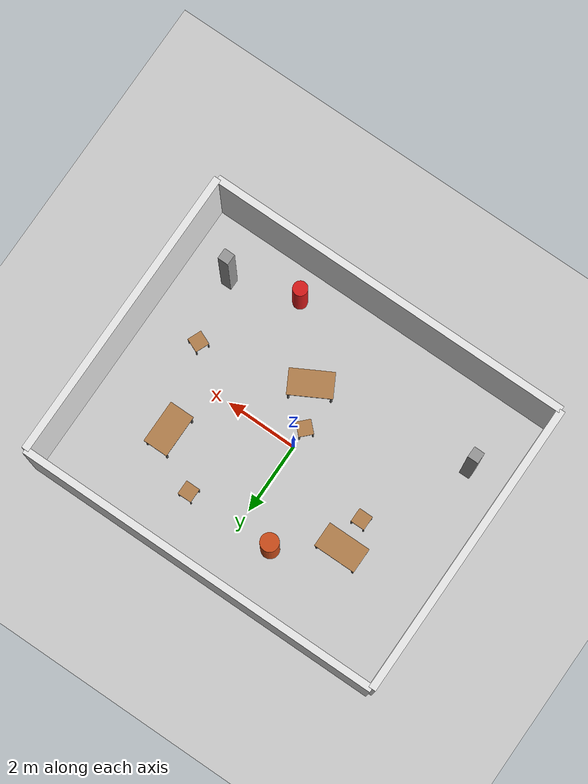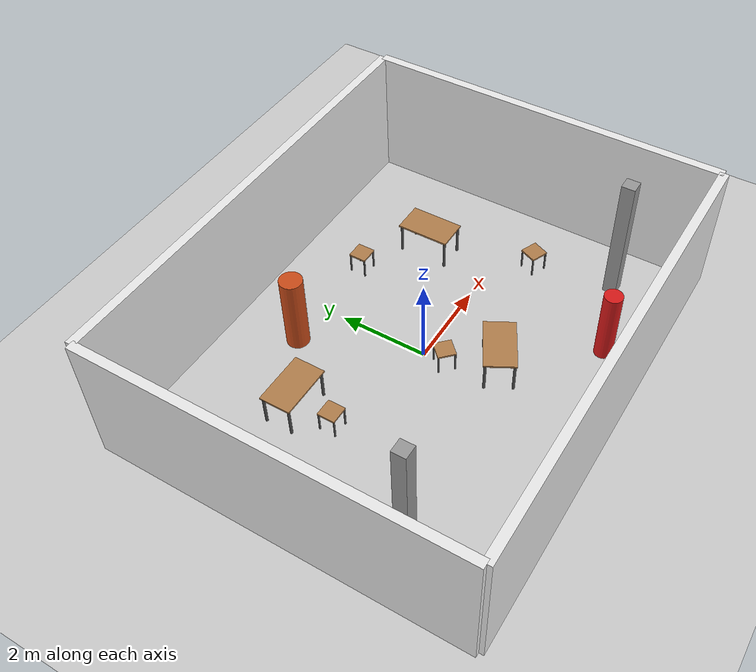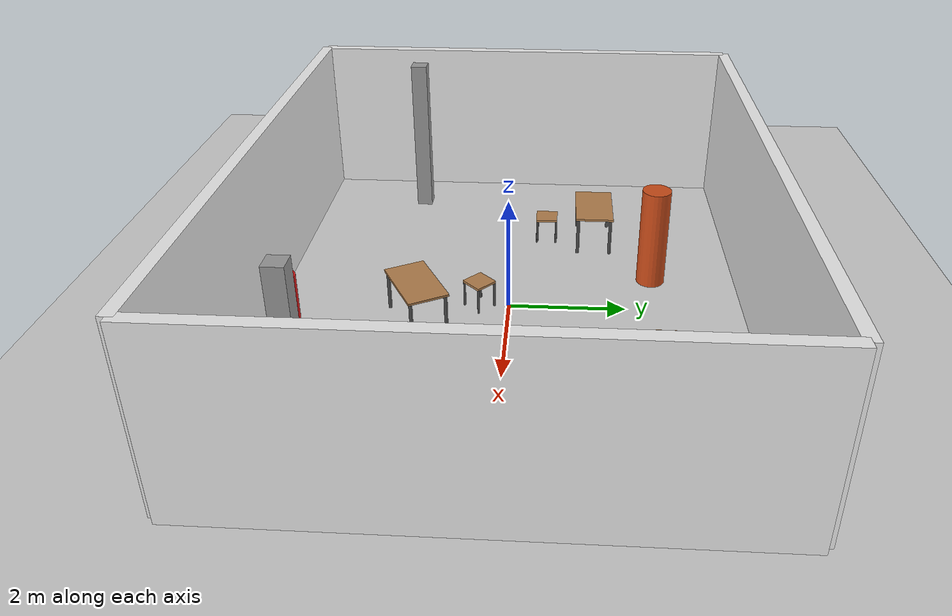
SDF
<?xml version="1.0"?>
<sdf version="1.6">
  <world name="cluttered">

    <physics name="default_physics" default="0" type="ode">
      <max_step_size>0.001</max_step_size>
      <real_time_factor>1.0</real_time_factor>
      <real_time_update_rate>1000</real_time_update_rate>
    </physics>

    <plugin name="gazebo_ros_state" filename="libgazebo_ros_state.so">
      <ros><namespace>/gazebo</namespace></ros>
      <update_rate>10.0</update_rate>
    </plugin>

    <light name="sun" type="directional">
      <cast_shadows>true</cast_shadows>
      <pose>0 0 10 0 0 0</pose>
      <diffuse>0.9 0.9 0.9 1</diffuse>
      <specular>0.3 0.3 0.3 1</specular>
      <direction>-0.5 0.1 -0.9</direction>
    </light>

    <model name="ground_plane">
      <static>true</static>
      <link name="link">
        <collision name="collision">
          <geometry><plane><normal>0 0 1</normal></plane></geometry>
          <surface><friction><ode><mu>100</mu><mu2>50</mu2></ode></friction></surface>
        </collision>
        <visual name="visual">
          <cast_shadows>false</cast_shadows>
          <geometry><plane><normal>0 0 1</normal><size>20 20</size></plane></geometry>
          <material><script><name>Gazebo/Grey</name></script></material>
        </visual>
      </link>
    </model>

    <!-- 外周壁 (内寸 10.0 × 8.0 — panel_room と同寸) -->
    <model name="wall_south">
      <static>true</static><pose>0 -4.1 1.5 0 0 0</pose>
      <link name="link">
        <collision name="col"><geometry><box><size>10.2 0.2 3.0</size></box></geometry></collision>
        <visual name="vis"><geometry><box><size>10.2 0.2 3.0</size></box></geometry>
          <material><script><name>Gazebo/White</name></script></material></visual>
      </link>
    </model>
    <model name="wall_north">
      <static>true</static><pose>0 4.1 1.5 0 0 0</pose>
      <link name="link">
        <collision name="col"><geometry><box><size>10.2 0.2 3.0</size></box></geometry></collision>
        <visual name="vis"><geometry><box><size>10.2 0.2 3.0</size></box></geometry>
          <material><script><name>Gazebo/White</name></script></material></visual>
      </link>
    </model>
    <model name="wall_west">
      <static>true</static><pose>-5.1 0 1.5 0 0 0</pose>
      <link name="link">
        <collision name="col"><geometry><box><size>0.2 8.2 3.0</size></box></geometry></collision>
        <visual name="vis"><geometry><box><size>0.2 8.2 3.0</size></box></geometry>
          <material><script><name>Gazebo/White</name></script></material></visual>
      </link>
    </model>
    <model name="wall_east">
      <static>true</static><pose>5.1 0 1.5 0 0 0</pose>
      <link name="link">
        <collision name="col"><geometry><box><size>0.2 8.2 3.0</size></box></geometry></collision>
        <visual name="vis"><geometry><box><size>0.2 8.2 3.0</size></box></geometry>
          <material><script><name>Gazebo/White</name></script></material></visual>
      </link>
    </model>

    <!-- 机: 脚 4 本 (r0.03, collision あり) + 天板 (visual のみ) -->
    <model name="desk_01">
      <static>true</static><pose>-2.5 1.5 0 0 0 0</pose>
      <link name="link">
        <collision name="leg1"><pose>0.55 0.3 0.35 0 0 0</pose>
          <geometry><cylinder><radius>0.03</radius><length>0.7</length></cylinder></geometry></collision>
        <collision name="leg2"><pose>0.55 -0.3 0.35 0 0 0</pose>
          <geometry><cylinder><radius>0.03</radius><length>0.7</length></cylinder></geometry></collision>
        <collision name="leg3"><pose>-0.55 0.3 0.35 0 0 0</pose>
          <geometry><cylinder><radius>0.03</radius><length>0.7</length></cylinder></geometry></collision>
        <collision name="leg4"><pose>-0.55 -0.3 0.35 0 0 0</pose>
          <geometry><cylinder><radius>0.03</radius><length>0.7</length></cylinder></geometry></collision>
        <visual name="leg1v"><pose>0.55 0.3 0.35 0 0 0</pose>
          <geometry><cylinder><radius>0.03</radius><length>0.7</length></cylinder></geometry>
          <material><script><name>Gazebo/DarkGrey</name></script></material></visual>
        <visual name="leg2v"><pose>0.55 -0.3 0.35 0 0 0</pose>
          <geometry><cylinder><radius>0.03</radius><length>0.7</length></cylinder></geometry>
          <material><script><name>Gazebo/DarkGrey</name></script></material></visual>
        <visual name="leg3v"><pose>-0.55 0.3 0.35 0 0 0</pose>
          <geometry><cylinder><radius>0.03</radius><length>0.7</length></cylinder></geometry>
          <material><script><name>Gazebo/DarkGrey</name></script></material></visual>
        <visual name="leg4v"><pose>-0.55 -0.3 0.35 0 0 0</pose>
          <geometry><cylinder><radius>0.03</radius><length>0.7</length></cylinder></geometry>
          <material><script><name>Gazebo/DarkGrey</name></script></material></visual>
        <visual name="top"><pose>0 0 0.72 0 0 0</pose>
          <geometry><box><size>1.2 0.7 0.04</size></box></geometry>
          <material><script><name>Gazebo/Wood</name></script></material></visual>
      </link>
    </model>
    <model name="desk_02">
      <static>true</static><pose>0.5 -1.5 0 0 0 0.5</pose>
      <link name="link">
        <collision name="leg1"><pose>0.55 0.3 0.35 0 0 0</pose>
          <geometry><cylinder><radius>0.03</radius><length>0.7</length></cylinder></geometry></collision>
        <collision name="leg2"><pose>0.55 -0.3 0.35 0 0 0</pose>
          <geometry><cylinder><radius>0.03</radius><length>0.7</length></cylinder></geometry></collision>
        <collision name="leg3"><pose>-0.55 0.3 0.35 0 0 0</pose>
          <geometry><cylinder><radius>0.03</radius><length>0.7</length></cylinder></geometry></collision>
        <collision name="leg4"><pose>-0.55 -0.3 0.35 0 0 0</pose>
          <geometry><cylinder><radius>0.03</radius><length>0.7</length></cylinder></geometry></collision>
        <visual name="leg1v"><pose>0.55 0.3 0.35 0 0 0</pose>
          <geometry><cylinder><radius>0.03</radius><length>0.7</length></cylinder></geometry>
          <material><script><name>Gazebo/DarkGrey</name></script></material></visual>
        <visual name="leg2v"><pose>0.55 -0.3 0.35 0 0 0</pose>
          <geometry><cylinder><radius>0.03</radius><length>0.7</length></cylinder></geometry>
          <material><script><name>Gazebo/DarkGrey</name></script></material></visual>
        <visual name="leg3v"><pose>-0.55 0.3 0.35 0 0 0</pose>
          <geometry><cylinder><radius>0.03</radius><length>0.7</length></cylinder></geometry>
          <material><script><name>Gazebo/DarkGrey</name></script></material></visual>
        <visual name="leg4v"><pose>-0.55 -0.3 0.35 0 0 0</pose>
          <geometry><cylinder><radius>0.03</radius><length>0.7</length></cylinder></geometry>
          <material><script><name>Gazebo/DarkGrey</name></script></material></visual>
        <visual name="top"><pose>0 0 0.72 0 0 0</pose>
          <geometry><box><size>1.2 0.7 0.04</size></box></geometry>
          <material><script><name>Gazebo/Wood</name></script></material></visual>
      </link>
    </model>
    <model name="desk_03">
      <static>true</static><pose>2.8 1.5 0 0 0 1.5708</pose>
      <link name="link">
        <collision name="leg1"><pose>0.55 0.3 0.35 0 0 0</pose>
          <geometry><cylinder><radius>0.03</radius><length>0.7</length></cylinder></geometry></collision>
        <collision name="leg2"><pose>0.55 -0.3 0.35 0 0 0</pose>
          <geometry><cylinder><radius>0.03</radius><length>0.7</length></cylinder></geometry></collision>
        <collision name="leg3"><pose>-0.55 0.3 0.35 0 0 0</pose>
          <geometry><cylinder><radius>0.03</radius><length>0.7</length></cylinder></geometry></collision>
        <collision name="leg4"><pose>-0.55 -0.3 0.35 0 0 0</pose>
          <geometry><cylinder><radius>0.03</radius><length>0.7</length></cylinder></geometry></collision>
        <visual name="leg1v"><pose>0.55 0.3 0.35 0 0 0</pose>
          <geometry><cylinder><radius>0.03</radius><length>0.7</length></cylinder></geometry>
          <material><script><name>Gazebo/DarkGrey</name></script></material></visual>
        <visual name="leg2v"><pose>0.55 -0.3 0.35 0 0 0</pose>
          <geometry><cylinder><radius>0.03</radius><length>0.7</length></cylinder></geometry>
          <material><script><name>Gazebo/DarkGrey</name></script></material></visual>
        <visual name="leg3v"><pose>-0.55 0.3 0.35 0 0 0</pose>
          <geometry><cylinder><radius>0.03</radius><length>0.7</length></cylinder></geometry>
          <material><script><name>Gazebo/DarkGrey</name></script></material></visual>
        <visual name="leg4v"><pose>-0.55 -0.3 0.35 0 0 0</pose>
          <geometry><cylinder><radius>0.03</radius><length>0.7</length></cylinder></geometry>
          <material><script><name>Gazebo/DarkGrey</name></script></material></visual>
        <visual name="top"><pose>0 0 0.72 0 0 0</pose>
          <geometry><box><size>1.2 0.7 0.04</size></box></geometry>
          <material><script><name>Gazebo/Wood</name></script></material></visual>
      </link>
    </model>

    <!-- 椅子: 脚 4 本 (r0.02) + 座面 (visual のみ) -->
    <model name="chair_01">
      <static>true</static><pose>-2.5 0.6 0 0 0 0</pose>
      <link name="link">
        <collision name="leg1"><pose>0.18 0.18 0.225 0 0 0</pose>
          <geometry><cylinder><radius>0.02</radius><length>0.45</length></cylinder></geometry></collision>
        <collision name="leg2"><pose>0.18 -0.18 0.225 0 0 0</pose>
          <geometry><cylinder><radius>0.02</radius><length>0.45</length></cylinder></geometry></collision>
        <collision name="leg3"><pose>-0.18 0.18 0.225 0 0 0</pose>
          <geometry><cylinder><radius>0.02</radius><length>0.45</length></cylinder></geometry></collision>
        <collision name="leg4"><pose>-0.18 -0.18 0.225 0 0 0</pose>
          <geometry><cylinder><radius>0.02</radius><length>0.45</length></cylinder></geometry></collision>
        <visual name="leg1v"><pose>0.18 0.18 0.225 0 0 0</pose>
          <geometry><cylinder><radius>0.02</radius><length>0.45</length></cylinder></geometry>
          <material><script><name>Gazebo/DarkGrey</name></script></material></visual>
        <visual name="leg2v"><pose>0.18 -0.18 0.225 0 0 0</pose>
          <geometry><cylinder><radius>0.02</radius><length>0.45</length></cylinder></geometry>
          <material><script><name>Gazebo/DarkGrey</name></script></material></visual>
        <visual name="leg3v"><pose>-0.18 0.18 0.225 0 0 0</pose>
          <geometry><cylinder><radius>0.02</radius><length>0.45</length></cylinder></geometry>
          <material><script><name>Gazebo/DarkGrey</name></script></material></visual>
        <visual name="leg4v"><pose>-0.18 -0.18 0.225 0 0 0</pose>
          <geometry><cylinder><radius>0.02</radius><length>0.45</length></cylinder></geometry>
          <material><script><name>Gazebo/DarkGrey</name></script></material></visual>
        <visual name="seat"><pose>0 0 0.47 0 0 0</pose>
          <geometry><box><size>0.4 0.4 0.04</size></box></geometry>
          <material><script><name>Gazebo/Wood</name></script></material></visual>
      </link>
    </model>
    <model name="chair_02">
      <static>true</static><pose>0.0 -0.5 0 0 0 0.8</pose>
      <link name="link">
        <collision name="leg1"><pose>0.18 0.18 0.225 0 0 0</pose>
          <geometry><cylinder><radius>0.02</radius><length>0.45</length></cylinder></geometry></collision>
        <collision name="leg2"><pose>0.18 -0.18 0.225 0 0 0</pose>
          <geometry><cylinder><radius>0.02</radius><length>0.45</length></cylinder></geometry></collision>
        <collision name="leg3"><pose>-0.18 0.18 0.225 0 0 0</pose>
          <geometry><cylinder><radius>0.02</radius><length>0.45</length></cylinder></geometry></collision>
        <collision name="leg4"><pose>-0.18 -0.18 0.225 0 0 0</pose>
          <geometry><cylinder><radius>0.02</radius><length>0.45</length></cylinder></geometry></collision>
        <visual name="leg1v"><pose>0.18 0.18 0.225 0 0 0</pose>
          <geometry><cylinder><radius>0.02</radius><length>0.45</length></cylinder></geometry>
          <material><script><name>Gazebo/DarkGrey</name></script></material></visual>
        <visual name="leg2v"><pose>0.18 -0.18 0.225 0 0 0</pose>
          <geometry><cylinder><radius>0.02</radius><length>0.45</length></cylinder></geometry>
          <material><script><name>Gazebo/DarkGrey</name></script></material></visual>
        <visual name="leg3v"><pose>-0.18 0.18 0.225 0 0 0</pose>
          <geometry><cylinder><radius>0.02</radius><length>0.45</length></cylinder></geometry>
          <material><script><name>Gazebo/DarkGrey</name></script></material></visual>
        <visual name="leg4v"><pose>-0.18 -0.18 0.225 0 0 0</pose>
          <geometry><cylinder><radius>0.02</radius><length>0.45</length></cylinder></geometry>
          <material><script><name>Gazebo/DarkGrey</name></script></material></visual>
        <visual name="seat"><pose>0 0 0.47 0 0 0</pose>
          <geometry><box><size>0.4 0.4 0.04</size></box></geometry>
          <material><script><name>Gazebo/Wood</name></script></material></visual>
      </link>
    </model>
    <model name="chair_03">
      <static>true</static><pose>1.5 2.5 0 0 0 0</pose>
      <link name="link">
        <collision name="leg1"><pose>0.18 0.18 0.225 0 0 0</pose>
          <geometry><cylinder><radius>0.02</radius><length>0.45</length></cylinder></geometry></collision>
        <collision name="leg2"><pose>0.18 -0.18 0.225 0 0 0</pose>
          <geometry><cylinder><radius>0.02</radius><length>0.45</length></cylinder></geometry></collision>
        <collision name="leg3"><pose>-0.18 0.18 0.225 0 0 0</pose>
          <geometry><cylinder><radius>0.02</radius><length>0.45</length></cylinder></geometry></collision>
        <collision name="leg4"><pose>-0.18 -0.18 0.225 0 0 0</pose>
          <geometry><cylinder><radius>0.02</radius><length>0.45</length></cylinder></geometry></collision>
        <visual name="leg1v"><pose>0.18 0.18 0.225 0 0 0</pose>
          <geometry><cylinder><radius>0.02</radius><length>0.45</length></cylinder></geometry>
          <material><script><name>Gazebo/DarkGrey</name></script></material></visual>
        <visual name="leg2v"><pose>0.18 -0.18 0.225 0 0 0</pose>
          <geometry><cylinder><radius>0.02</radius><length>0.45</length></cylinder></geometry>
          <material><script><name>Gazebo/DarkGrey</name></script></material></visual>
        <visual name="leg3v"><pose>-0.18 0.18 0.225 0 0 0</pose>
          <geometry><cylinder><radius>0.02</radius><length>0.45</length></cylinder></geometry>
          <material><script><name>Gazebo/DarkGrey</name></script></material></visual>
        <visual name="leg4v"><pose>-0.18 -0.18 0.225 0 0 0</pose>
          <geometry><cylinder><radius>0.02</radius><length>0.45</length></cylinder></geometry>
          <material><script><name>Gazebo/DarkGrey</name></script></material></visual>
        <visual name="seat"><pose>0 0 0.47 0 0 0</pose>
          <geometry><box><size>0.4 0.4 0.04</size></box></geometry>
          <material><script><name>Gazebo/Wood</name></script></material></visual>
      </link>
    </model>
    <model name="chair_04">
      <static>true</static><pose>3.5 -0.8 0 0 0 -0.4</pose>
      <link name="link">
        <collision name="leg1"><pose>0.18 0.18 0.225 0 0 0</pose>
          <geometry><cylinder><radius>0.02</radius><length>0.45</length></cylinder></geometry></collision>
        <collision name="leg2"><pose>0.18 -0.18 0.225 0 0 0</pose>
          <geometry><cylinder><radius>0.02</radius><length>0.45</length></cylinder></geometry></collision>
        <collision name="leg3"><pose>-0.18 0.18 0.225 0 0 0</pose>
          <geometry><cylinder><radius>0.02</radius><length>0.45</length></cylinder></geometry></collision>
        <collision name="leg4"><pose>-0.18 -0.18 0.225 0 0 0</pose>
          <geometry><cylinder><radius>0.02</radius><length>0.45</length></cylinder></geometry></collision>
        <visual name="leg1v"><pose>0.18 0.18 0.225 0 0 0</pose>
          <geometry><cylinder><radius>0.02</radius><length>0.45</length></cylinder></geometry>
          <material><script><name>Gazebo/DarkGrey</name></script></material></visual>
        <visual name="leg2v"><pose>0.18 -0.18 0.225 0 0 0</pose>
          <geometry><cylinder><radius>0.02</radius><length>0.45</length></cylinder></geometry>
          <material><script><name>Gazebo/DarkGrey</name></script></material></visual>
        <visual name="leg3v"><pose>-0.18 0.18 0.225 0 0 0</pose>
          <geometry><cylinder><radius>0.02</radius><length>0.45</length></cylinder></geometry>
          <material><script><name>Gazebo/DarkGrey</name></script></material></visual>
        <visual name="leg4v"><pose>-0.18 -0.18 0.225 0 0 0</pose>
          <geometry><cylinder><radius>0.02</radius><length>0.45</length></cylinder></geometry>
          <material><script><name>Gazebo/DarkGrey</name></script></material></visual>
        <visual name="seat"><pose>0 0 0.47 0 0 0</pose>
          <geometry><box><size>0.4 0.4 0.04</size></box></geometry>
          <material><script><name>Gazebo/Wood</name></script></material></visual>
      </link>
    </model>

    <model name="pillar_01">
      <static>true</static><pose>-4.0 -2.0 1.5 0 0 0</pose>
      <link name="link">
        <collision name="col"><geometry><box><size>0.3 0.3 3.0</size></box></geometry></collision>
        <visual name="vis"><geometry><box><size>0.3 0.3 3.0</size></box></geometry>
          <material><script><name>Gazebo/Grey</name></script></material></visual>
      </link>
    </model>
    <model name="pillar_02">
      <static>true</static><pose>3.8 -2.6 1.5 0 0 0</pose>
      <link name="link">
        <collision name="col"><geometry><box><size>0.3 0.3 3.0</size></box></geometry></collision>
        <visual name="vis"><geometry><box><size>0.3 0.3 3.0</size></box></geometry>
          <material><script><name>Gazebo/Grey</name></script></material></visual>
      </link>
    </model>

    <!-- 試験員模擬シリンダー (person_mover が動かす) -->
    <model name="inspector">
      <static>true</static>
      <pose>-1.0 2.5 0.9 0 0 0</pose>
      <link name="link">
        <collision name="col">
          <geometry><cylinder><radius>0.25</radius><length>1.8</length></cylinder></geometry>
        </collision>
        <visual name="vis">
          <geometry><cylinder><radius>0.25</radius><length>1.8</length></cylinder></geometry>
          <material>
            <ambient>0.8 0.3 0.1 1</ambient>
            <diffuse>0.8 0.3 0.1 1</diffuse>
          </material>
        </visual>
      </link>
    </model>

    <!-- 回避検証用の動く障害物 (obstacle_mover が動かす) -->
    <model name="wanderer">
      <pose>2.0 -3.2 0.85 0 0 0</pose>
      <link name="link">
        <inertial><mass>70.0</mass>
          <inertia><ixx>1.0</ixx><ixy>0</ixy><ixz>0</ixz>
                   <iyy>1.0</iyy><iyz>0</iyz><izz>0.3</izz></inertia>
        </inertial>
        <collision name="col">
          <geometry><cylinder><radius>0.2</radius><length>1.7</length></cylinder></geometry>
        </collision>
        <visual name="vis">
          <geometry><cylinder><radius>0.2</radius><length>1.7</length></cylinder></geometry>
          <material>
            <ambient>0.85 0.1 0.1 1</ambient>
            <diffuse>0.85 0.1 0.1 1</diffuse>
          </material>
        </visual>
      </link>
    </model>

  </world>
</sdf>
